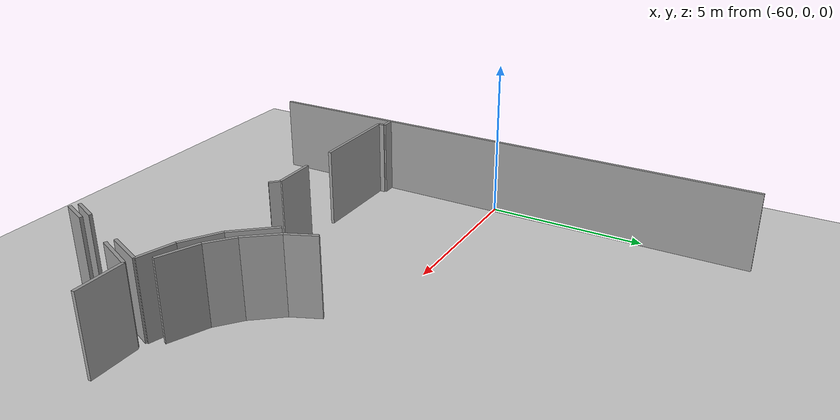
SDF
<sdf version="1.6">
 <world name="default">
  <model name="ground_plane">
   <static>1</static>
   <link name="link">
    <collision name="collision">
     <geometry><plane><normal>0 0 1</normal><size>100 100</size></plane></geometry>
     <surface><friction><ode><mu>100</mu><mu2>50</mu2></ode></friction></surface>
    </collision>
    <visual name="visual">
     <cast_shadows>0</cast_shadows>
     <geometry><plane><normal>0 0 1</normal><size>100 100</size></plane></geometry>
     <material>
      <script><uri>file://media/materials/scripts/gazebo.material</uri><name>Gazebo/Grey</name></script>
     </material>
    </visual>
   </link>
  </model>
  <model name="50041186">
   <static>1</static>
   <link name="Wall_0">
    <collision name="Wall_0_Collision">
     <geometry><box><size>0.214501031255 0.1 2.5</size></box></geometry>
     <pose>0.107250515627 0 1.25 0 0 0</pose>
    </collision>
    <visual name="Wall_0_Visual">
     <pose>0.107250515627 0 1.25 0 0 0</pose>
     <geometry><box><size>0.214501031255 0.1 2.5</size></box></geometry>
     <material>
      <script><uri>file://media/materials/scripts/gazebo.material</uri><name>Gazebo/Grey</name></script>
      <ambient>1 1 1 1</ambient>
     </material>
    </visual>
    <pose>0.435348246867 -12.5315564017 0 0 0 1.57079632679</pose>
   </link>
   <link name="Wall_1">
    <collision name="Wall_1_Collision">
     <geometry><box><size>0.435348246867 0.1 2.5</size></box></geometry>
     <pose>0.217674123433 0 1.25 0 0 0</pose>
    </collision>
    <visual name="Wall_1_Visual">
     <pose>0.217674123433 0 1.25 0 0 0</pose>
     <geometry><box><size>0.435348246867 0.1 2.5</size></box></geometry>
     <material>
      <script><uri>file://media/materials/scripts/gazebo.material</uri><name>Gazebo/Grey</name></script>
      <ambient>1 1 1 1</ambient>
     </material>
    </visual>
    <pose>0.435348246867 -12.3170553705 0 0 0 3.14159265359</pose>
   </link>
   <link name="Wall_12">
    <collision name="Wall_12_Collision">
     <geometry><box><size>1.47616845365 0.1 2.5</size></box></geometry>
     <pose>0.738084226823 0 1.25 0 0 0</pose>
    </collision>
    <visual name="Wall_12_Visual">
     <pose>0.738084226823 0 1.25 0 0 0</pose>
     <geometry><box><size>1.47616845365 0.1 2.5</size></box></geometry>
     <material>
      <script><uri>file://media/materials/scripts/gazebo.material</uri><name>Gazebo/Grey</name></script>
      <ambient>1 1 1 1</ambient>
     </material>
    </visual>
    <pose>8.27529747739 -10.7025860701 0 0 0 -0.876905731931</pose>
   </link>
   <link name="Wall_13">
    <collision name="Wall_13_Collision">
     <geometry><box><size>1.25161306481 0.1 2.5</size></box></geometry>
     <pose>0.625806532405 0 1.25 0 0 0</pose>
    </collision>
    <visual name="Wall_13_Visual">
     <pose>0.625806532405 0 1.25 0 0 0</pose>
     <geometry><box><size>1.25161306481 0.1 2.5</size></box></geometry>
     <material>
      <script><uri>file://media/materials/scripts/gazebo.material</uri><name>Gazebo/Grey</name></script>
      <ambient>1 1 1 1</ambient>
     </material>
    </visual>
    <pose>9.21935586229 -11.8374107568 0 0 0 -0.569832502966</pose>
   </link>
   <link name="Wall_14">
    <collision name="Wall_14_Collision">
     <geometry><box><size>1.13580694418 0.1 2.5</size></box></geometry>
     <pose>0.567903472089 0 1.25 0 0 0</pose>
    </collision>
    <visual name="Wall_14_Visual">
     <pose>0.567903472089 0 1.25 0 0 0</pose>
     <geometry><box><size>1.13580694418 0.1 2.5</size></box></geometry>
     <material>
      <script><uri>file://media/materials/scripts/gazebo.material</uri><name>Gazebo/Grey</name></script>
      <ambient>1 1 1 1</ambient>
     </material>
    </visual>
    <pose>10.2732032366 -12.5126447723 0 0 0 -0.298885076363</pose>
   </link>
   <link name="Wall_15">
    <collision name="Wall_15_Collision">
     <geometry><box><size>1.23903996177 0.1 2.5</size></box></geometry>
     <pose>0.619519980884 0 1.25 0 0 0</pose>
    </collision>
    <visual name="Wall_15_Visual">
     <pose>0.619519980884 0 1.25 0 0 0</pose>
     <geometry><box><size>1.23903996177 0.1 2.5</size></box></geometry>
     <material>
      <script><uri>file://media/materials/scripts/gazebo.material</uri><name>Gazebo/Grey</name></script>
      <ambient>1 1 1 1</ambient>
     </material>
    </visual>
    <pose>11.3586546089 -12.8470886879 0 0 0 -1.9669585284</pose>
   </link>
   <link name="Wall_16">
    <collision name="Wall_16_Collision">
     <geometry><box><size>0.882595050381 0.1 2.5</size></box></geometry>
     <pose>0.441297525191 0 1.25 0 0 0</pose>
    </collision>
    <visual name="Wall_16_Visual">
     <pose>0.441297525191 0 1.25 0 0 0</pose>
     <geometry><box><size>0.882595050381 0.1 2.5</size></box></geometry>
     <material>
      <script><uri>file://media/materials/scripts/gazebo.material</uri><name>Gazebo/Grey</name></script>
      <ambient>1 1 1 1</ambient>
     </material>
    </visual>
    <pose>10.2049182929 -15.6444867523 0 0 0 -1.97330887364</pose>
   </link>
   <link name="Wall_17">
    <collision name="Wall_17_Collision">
     <geometry><box><size>0.352043845135 0.1 2.5</size></box></geometry>
     <pose>0.176021922568 0 1.25 0 0 0</pose>
    </collision>
    <visual name="Wall_17_Visual">
     <pose>0.176021922568 0 1.25 0 0 0</pose>
     <geometry><box><size>0.352043845135 0.1 2.5</size></box></geometry>
     <material>
      <script><uri>file://media/materials/scripts/gazebo.material</uri><name>Gazebo/Grey</name></script>
      <ambient>1 1 1 1</ambient>
     </material>
    </visual>
    <pose>6.17788354752 -12.791876884 0 0 0 2.33936792952</pose>
   </link>
   <link name="Wall_18">
    <collision name="Wall_18_Collision">
     <geometry><box><size>1.33676027289 0.1 2.5</size></box></geometry>
     <pose>0.668380136443 0 1.25 0 0 0</pose>
    </collision>
    <visual name="Wall_18_Visual">
     <pose>0.668380136443 0 1.25 0 0 0</pose>
     <geometry><box><size>1.33676027289 0.1 2.5</size></box></geometry>
     <material>
      <script><uri>file://media/materials/scripts/gazebo.material</uri><name>Gazebo/Grey</name></script>
      <ambient>1 1 1 1</ambient>
     </material>
    </visual>
    <pose>5.93317467872 -12.5387910519 0 0 0 3.14159265359</pose>
   </link>
   <link name="Wall_19">
    <collision name="Wall_19_Collision">
     <geometry><box><size>2.96405769477 0.1 2.5</size></box></geometry>
     <pose>1.48202884739 0 1.25 0 0 0</pose>
    </collision>
    <visual name="Wall_19_Visual">
     <pose>1.48202884739 0 1.25 0 0 0</pose>
     <geometry><box><size>2.96405769477 0.1 2.5</size></box></geometry>
     <material>
      <script><uri>file://media/materials/scripts/gazebo.material</uri><name>Gazebo/Grey</name></script>
      <ambient>1 1 1 1</ambient>
     </material>
    </visual>
    <pose>3.39939711249 -12.5387910519 0 0 0 3.13915185854</pose>
   </link>
   <link name="Wall_21">
    <collision name="Wall_21_Collision">
     <geometry><box><size>0.890921661925 0.1 2.5</size></box></geometry>
     <pose>0.445460830963 0 1.25 0 0 0</pose>
    </collision>
    <visual name="Wall_21_Visual">
     <pose>0.445460830963 0 1.25 0 0 0</pose>
     <geometry><box><size>0.890921661925 0.1 2.5</size></box></geometry>
     <material>
      <script><uri>file://media/materials/scripts/gazebo.material</uri><name>Gazebo/Grey</name></script>
      <ambient>1 1 1 1</ambient>
     </material>
    </visual>
    <pose>10.0965254641 -16.5755989211 0 0 0 1.1859778071</pose>
   </link>
   <link name="Wall_22">
    <collision name="Wall_22_Collision">
     <geometry><box><size>1.31678040376 0.1 2.5</size></box></geometry>
     <pose>0.658390201879 0 1.25 0 0 0</pose>
    </collision>
    <visual name="Wall_22_Visual">
     <pose>0.658390201879 0 1.25 0 0 0</pose>
     <geometry><box><size>1.31678040376 0.1 2.5</size></box></geometry>
     <material>
      <script><uri>file://media/materials/scripts/gazebo.material</uri><name>Gazebo/Grey</name></script>
      <ambient>1 1 1 1</ambient>
     </material>
    </visual>
    <pose>11.1187688402 -14.1028716484 0 0 0 1.15652589971</pose>
   </link>
   <link name="Wall_23">
    <collision name="Wall_23_Collision">
     <geometry><box><size>1.53165528491 0.1 2.5</size></box></geometry>
     <pose>0.765827642456 0 1.25 0 0 0</pose>
    </collision>
    <visual name="Wall_23_Visual">
     <pose>0.765827642456 0 1.25 0 0 0</pose>
     <geometry><box><size>1.53165528491 0.1 2.5</size></box></geometry>
     <material>
      <script><uri>file://media/materials/scripts/gazebo.material</uri><name>Gazebo/Grey</name></script>
      <ambient>1 1 1 1</ambient>
     </material>
    </visual>
    <pose>11.6488021577 -12.8974773917 0 0 0 -0.00936410848774</pose>
   </link>
   <link name="Wall_34">
    <collision name="Wall_34_Collision">
     <geometry><box><size>1.2624915988 0.1 2.5</size></box></geometry>
     <pose>0.631245799402 0 1.25 0 0 0</pose>
    </collision>
    <visual name="Wall_34_Visual">
     <pose>0.631245799402 0 1.25 0 0 0</pose>
     <geometry><box><size>1.2624915988 0.1 2.5</size></box></geometry>
     <material>
      <script><uri>file://media/materials/scripts/gazebo.material</uri><name>Gazebo/Grey</name></script>
      <ambient>1 1 1 1</ambient>
     </material>
    </visual>
    <pose>11.1381881644 -12.444232905 0 0 0 2.72521592054</pose>
   </link>
   <link name="Wall_35">
    <collision name="Wall_35_Collision">
     <geometry><box><size>0.931648585218 0.1 2.5</size></box></geometry>
     <pose>0.465824292609 0 1.25 0 0 0</pose>
    </collision>
    <visual name="Wall_35_Visual">
     <pose>0.465824292609 0 1.25 0 0 0</pose>
     <geometry><box><size>0.931648585218 0.1 2.5</size></box></geometry>
     <material>
      <script><uri>file://media/materials/scripts/gazebo.material</uri><name>Gazebo/Grey</name></script>
      <ambient>1 1 1 1</ambient>
     </material>
    </visual>
    <pose>9.98356338252 -11.9336189116 0 0 0 2.44687182057</pose>
   </link>
   <link name="Wall_36">
    <collision name="Wall_36_Collision">
     <geometry><box><size>1.13881285767 0.1 2.5</size></box></geometry>
     <pose>0.569406428836 0 1.25 0 0 0</pose>
    </collision>
    <visual name="Wall_36_Visual">
     <pose>0.569406428836 0 1.25 0 0 0</pose>
     <geometry><box><size>1.13881285767 0.1 2.5</size></box></geometry>
     <material>
      <script><uri>file://media/materials/scripts/gazebo.material</uri><name>Gazebo/Grey</name></script>
      <ambient>1 1 1 1</ambient>
     </material>
    </visual>
    <pose>9.26784071077 -11.3372045058 0 0 0 2.23444943488</pose>
   </link>
   <link name="Wall_37">
    <collision name="Wall_37_Collision">
     <geometry><box><size>0.951009476274 0.1 2.5</size></box></geometry>
     <pose>0.475504738137 0 1.25 0 0 0</pose>
    </collision>
    <visual name="Wall_37_Visual">
     <pose>0.475504738137 0 1.25 0 0 0</pose>
     <geometry><box><size>0.951009476274 0.1 2.5</size></box></geometry>
     <material>
      <script><uri>file://media/materials/scripts/gazebo.material</uri><name>Gazebo/Grey</name></script>
      <ambient>1 1 1 1</ambient>
     </material>
    </visual>
    <pose>8.56633349199 -10.4401078851 0 0 0 1.9783693537</pose>
   </link>
   <link name="Wall_212">
    <collision name="Wall_212_Collision">
     <geometry><box><size>16.6153260352 0.1 2.5</size></box></geometry>
     <pose>8.30766301761 0 1.25 0 0 0</pose>
    </collision>
    <visual name="Wall_212_Visual">
     <pose>8.30766301761 0 1.25 0 0 0</pose>
     <geometry><box><size>16.6153260352 0.1 2.5</size></box></geometry>
     <material>
      <script><uri>file://media/materials/scripts/gazebo.material</uri><name>Gazebo/Grey</name></script>
      <ambient>1 1 1 1</ambient>
     </material>
    </visual>
    <pose>0.0 -16.6153260352 0 0 0 1.57079632679</pose>
   </link>
   <pose>-59.9 8.31532603522 0 0 0 0</pose>
  </model>
 </world>
</sdf>
